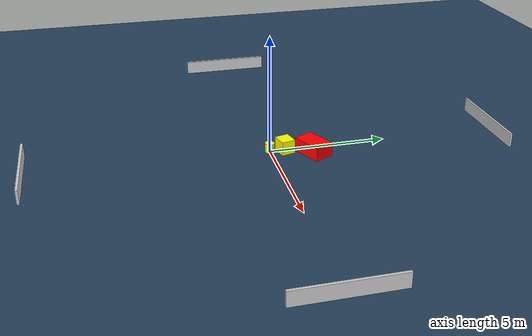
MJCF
<?xml version="1.0" ?>
<mujoco model="generated_environment">
  <option timestep="0.01" integrator="RK4" cone="elliptic"/>
  <default>
    <geom density="1"/>
  </default>
  <asset>
    <texture builtin="gradient" height="3072" name="skybox" rgb1="0.3 0.5 0.7" rgb2="0 0 0" type="skybox" width="512"/>
    <texture builtin="checker" height="300" name="groundplane" rgb1="0.2 0.3 0.4" rgb2="0.1 0.2 0.3" type="2d" width="300"/>
    <material name="groundplane" reflectance="0.2" texrepeat="5 5" texture="groundplane"/>
  </asset>
  <worldbody>
    <light dir="0 0 -1" directional="true" pos="0 0 1.5"/>
    <geom condim="3" friction="0.5 0.005 0.001" material="groundplane" name="floor" pos="0 0 0" size="0 0 0.05" type="plane"/>
    <body name="walls">
      <geom name="wall_1" condim="4" pos="-10.0 0.0 0.3" rgba="0.800000011920929 0.800000011920929 0.800000011920929 1.0" size="0.05 2.0 0.3" type="box"/>
      <geom name="wall_2" condim="4" pos="10.0 0.0 0.3" rgba="0.800000011920929 0.800000011920929 0.800000011920929 1.0" size="0.05 2.0 0.3" type="box"/>
      <geom name="wall_3" condim="4" pos="0.0 -10.0 0.3" rgba="0.800000011920929 0.800000011920929 0.800000011920929 1.0" size="2.0 0.05 0.3" type="box"/>
      <geom name="wall_4" condim="4" pos="0.0 10.0 0.3" rgba="0.800000011920929 0.800000011920929 0.800000011920929 1.0" size="2.0 0.05 0.3" type="box"/>
    </body>
    <body name="robot">
      <joint name="joint_x" type="slide" pos="0 0 0" axis="1 0 0"/>
      <joint name="joint_y" type="slide" pos="0 0 0" axis="0 1 0"/>
      <geom name="robot" type="cylinder" pos="0.0 0.0 0.2" size="0.2 0.2 0.0" mass="5.0" friction="1.0 0.005 0.0001" condim="4" rgba="1.0 1.0 0.0 1.0"/>
    </body>
    <body name="obstacle_1_movable">
      <geom name="obstacle_1_movable" condim="4" pos="0.1291431732319862 0.6207323564052717 0.3" euler="0 0 13.828533864525049" friction="0.0 0.005 0.001" rgba="1.0 1.0 0.0 1.0" size="0.32205205548518384 0.2977598099429099 0.3" type="box" mass="0.1"/>
      <joint type="free"/>
    </body>
    <body name="obstacle_2_static">
      <geom name="obstacle_2_static" condim="4" pos="0.5675696879759369 1.7296384908633178 0.3" euler="0 0 116.23424007260547" friction="0.0 0.005 0.001" rgba="1.0 0.0 0.0 1.0" size="0.4276366852355125 0.6701539475990611 0.3" type="box"/>
    </body>
  </worldbody>
  <actuator>
    <motor name="actuator_x" joint="joint_x" gear="1" ctrlrange="-1 1"/>
    <motor name="actuator_y" joint="joint_y" gear="1" ctrlrange="-1 1"/>
  </actuator>
</mujoco>
